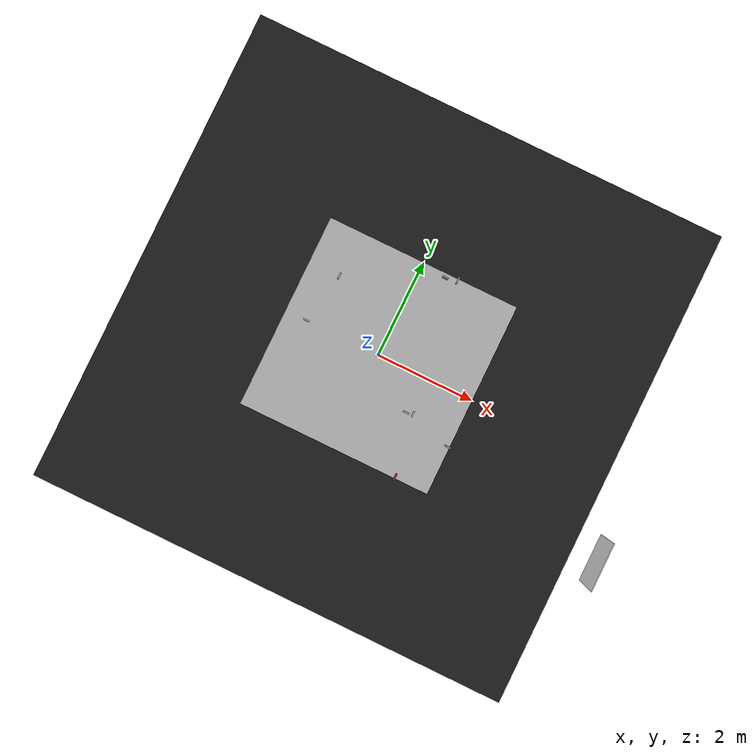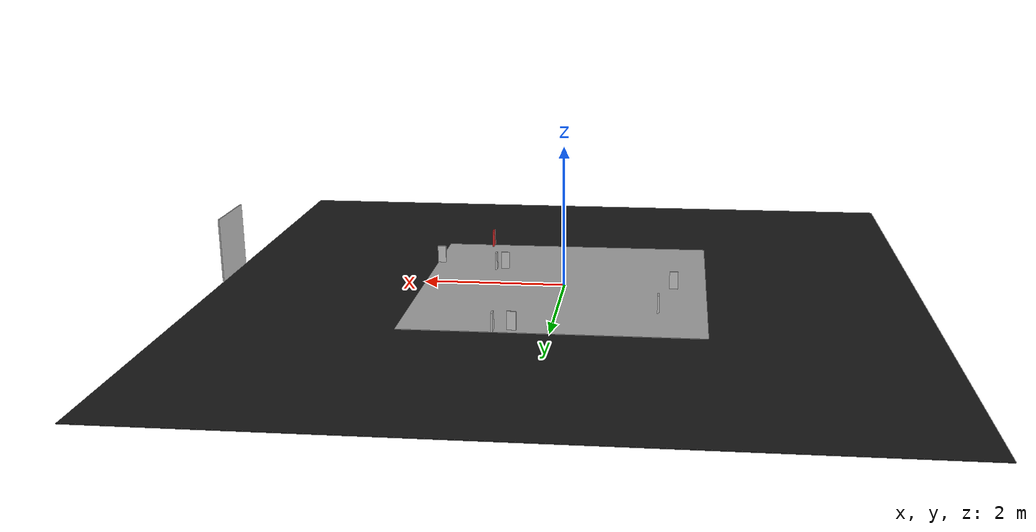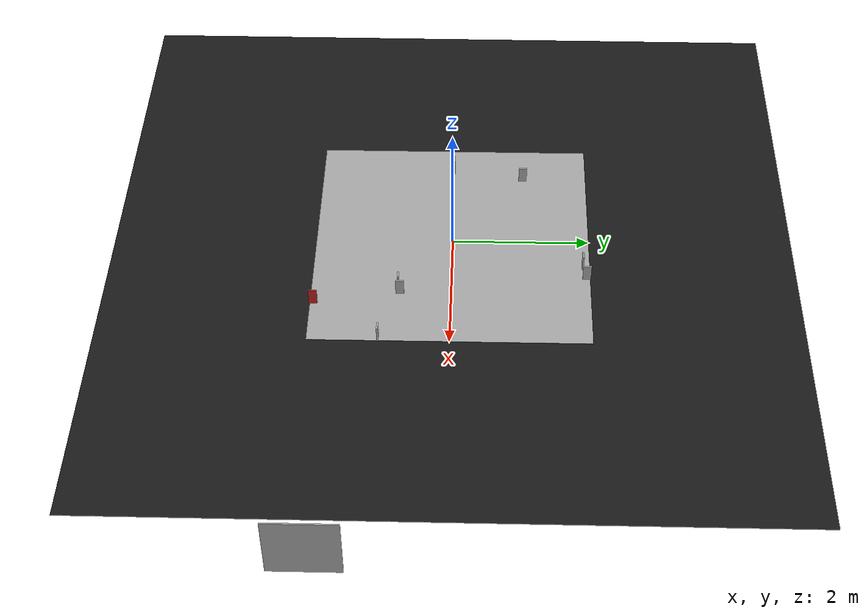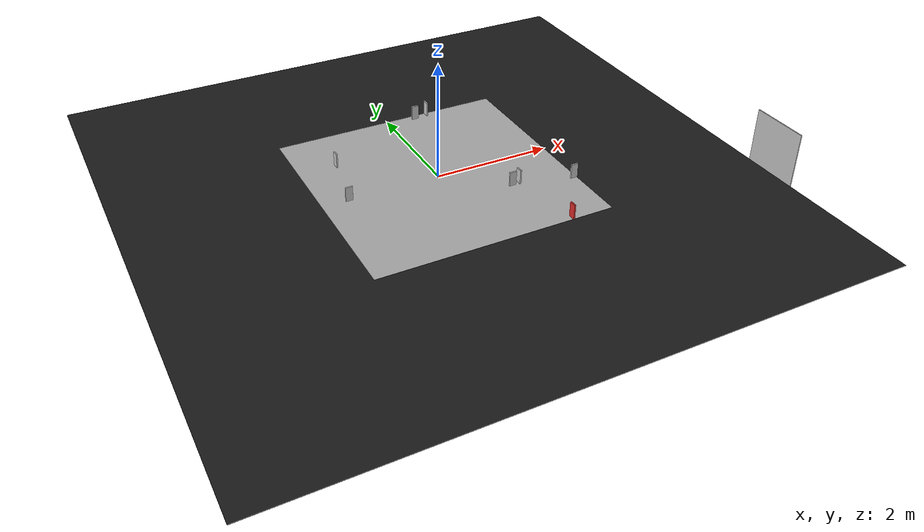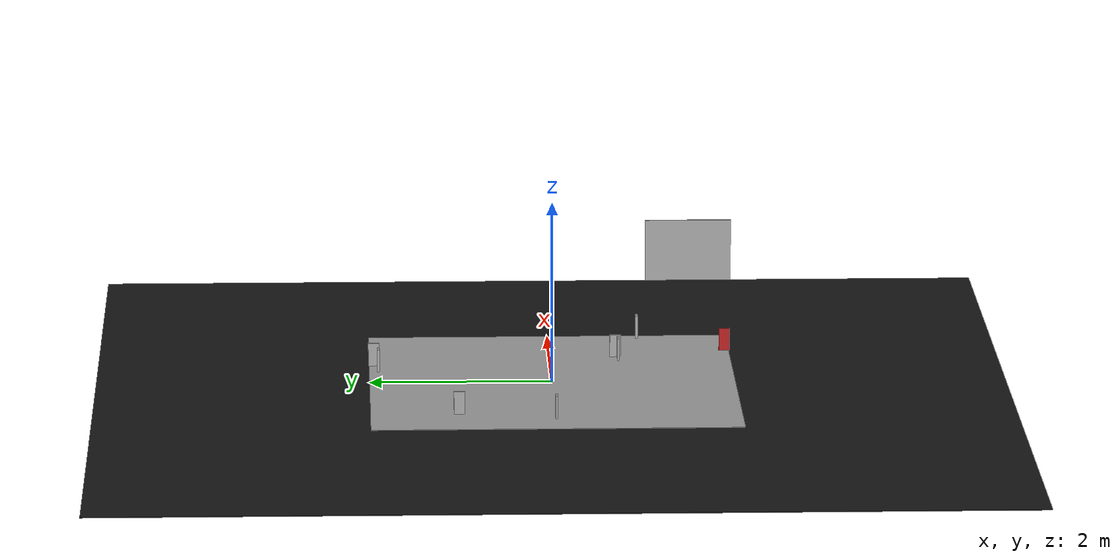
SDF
<sdf version="1.6">
 <world name="default">
  <scene>
   <ambient>0.8 0.8 0.8 1</ambient>
   <shadows>0</shadows>
   <grid>0</grid>
   <background>0.7 0.7 0.7 1</background>
  </scene>
  <include><uri>model://turtlebot3_autorace_2020/course</uri><pose>0 0 0 0 0 -3.14</pose></include>
  <include>
   <uri>model://turtlebot3_autorace_2020/traffic_light</uri>
   <pose>1.3 -1.95 0.13 0 0 -1.57</pose>
  </include>
  <include>
   <uri>model://turtlebot3_autorace_2020/traffic_parking</uri>
   <pose>0.74 1.95 0.13 0 0 -1.57</pose>
  </include>
  <include>
   <uri>model://turtlebot3_autorace_2020/traffic_tunnel</uri>
   <pose>-1.544 0.00 0.125 0 0 0</pose>
  </include>
  <include>
   <uri>model://turtlebot3_autorace_2020/traffic_stop</uri>
   <pose>-1.35 1.04 0.125 0 -0 -1.57</pose>
  </include>
  <include>
   <uri>model://turtlebot3_autorace_2020/traffic_pl_left</uri>
   <pose>0.50 1.90 0.13 0 0 0</pose>
  </include>
  <include>
   <uri>model://turtlebot3_autorace_2020/traffic_intersection</uri>
   <pose>1.95 -1.0 0.125 0 -0 0.0</pose>
  </include>
  <include>
   <uri>model://turtlebot3_autorace_2020/traffic_noentry</uri>
   <pose>0.95 -0.758 0.125 0 -0 0.0</pose>
  </include>
  <include>
   <uri>model://turtlebot3_autorace_2020/traffic_right</uri>
   <pose>1.08 -0.728 0.125 0 -0 -1.57</pose>
  </include>
  <include><uri>model://turtlebot3_autorace_2020/checker</uri><pose>5.50 -1.750 0.000 0 -0 0.0</pose></include>
  <light name="sun" type="directional">
   <pose>0 0 10 0 -0 0</pose>
   <diffuse>0.8 0.8 0.8 1</diffuse>
   <specular>0.1 0.1 0.1 1</specular>
   <attenuation>
    <range>1000</range>
    <constant>0.9</constant>
    <linear>0.01</linear>
    <quadratic>0.001</quadratic>
   </attenuation>
   <direction>-0.5 0.5 -1</direction>
  </light>
  <model name="ground2">
   <pose>0 0 -0.1 0 -0 0</pose>
   <static>1</static>
   <link name="ground">
    <collision name="ground_coll"><geometry><box><size>8 8 0.01</size></box></geometry></collision>
    <visual name="ground_vis">
     <geometry><box><size>10 10 0.01</size></box></geometry>
     <material>
      <script><uri>file://media/materials/scripts/gazebo.material</uri><name>Gazebo/FlatBlack</name></script>
     </material>
    </visual>
   </link>
  </model>
  <gravity>0 0 -9.8</gravity>
  <magnetic_field>6e-06 2.3e-05 -4.2e-05</magnetic_field>
  <atmosphere type="adiabatic"/>
  <physics name="default_physics" default="0" type="ode">
   <max_step_size>0.001</max_step_size>
   <real_time_factor>1</real_time_factor>
   <real_time_update_rate>1000</real_time_update_rate>
  </physics>
  <spherical_coordinates>
   <surface_model>EARTH_WGS84</surface_model>
   <latitude_deg>0</latitude_deg>
   <longitude_deg>0</longitude_deg>
   <elevation>0</elevation>
   <heading_deg>0</heading_deg>
  </spherical_coordinates>
  <light name="user_point_light_1" type="point">
   <pose>-1.648146 0.604519 1 0 -0 0</pose>
   <diffuse>0.5 0.5 0.5 1</diffuse>
   <specular>0.1 0.1 0.1 1</specular>
   <attenuation>
    <range>20</range>
    <constant>0.5</constant>
    <linear>0.01</linear>
    <quadratic>0.001</quadratic>
   </attenuation>
   <cast_shadows>0</cast_shadows>
   <direction>0 0 -1</direction>
  </light>
  <light name="user_point_light_2" type="point">
   <pose>1.63854 1.69565 1 0 -0 0</pose>
   <diffuse>0.5 0.5 0.5 1</diffuse>
   <specular>0.1 0.1 0.1 1</specular>
   <attenuation>
    <range>20</range>
    <constant>0.5</constant>
    <linear>0.01</linear>
    <quadratic>0.001</quadratic>
   </attenuation>
   <cast_shadows>0</cast_shadows>
   <direction>0 0 -1</direction>
  </light>
  <light name="user_point_light_3" type="point">
   <pose>0.42  -3.31 1 0 -0 0</pose>
   <diffuse>0.5 0.5 0.5 1</diffuse>
   <specular>0.1 0.1 0.1 1</specular>
   <attenuation>
    <range>20</range>
    <constant>0.5</constant>
    <linear>0.01</linear>
    <quadratic>0.001</quadratic>
   </attenuation>
   <cast_shadows>0</cast_shadows>
   <direction>0 0 -1</direction>
  </light>
  <model name="yellow_line_curve_1">
   <pose>-1.63 -0.6 0.001 0 0 1.57</pose>
   <static>1</static>
   <link name="link">
    <visual name="visual">
     <geometry><box><size>2.05 0.02 0.001</size></box></geometry>
     <material><ambient>1 0.8 0 1</ambient><diffuse>1 0.8 0 1</diffuse></material>
    </visual>
   </link>
  </model>
  <model name="yellow_line_curve_2">
   <pose>-0.7 -1.62 0.001 0 0 0</pose>
   <static>1</static>
   <link name="link">
    <visual name="visual">
     <geometry><box><size>1.85 0.02 0.001</size></box></geometry>
     <material><ambient>1 0.8 0 1</ambient><diffuse>1 0.8 0 1</diffuse></material>
    </visual>
   </link>
  </model>
  <model name="white_line_curve_1">
   <pose>-1.88 -0.87 0.001 0 0 1.57</pose>
   <static>1</static>
   <link name="link">
    <visual name="visual">
     <geometry><box><size>2.0 0.02 0.001</size></box></geometry>
     <material><ambient>1 1 1 1</ambient><diffuse>1 1 1 1</diffuse></material>
    </visual>
   </link>
  </model>
  <model name="white_line_curve_2">
   <pose>-0.9 -1.88 0.001 0 0 0</pose>
   <static>1</static>
   <link name="link">
    <visual name="visual">
     <geometry><box><size>2.0 0.02 0.001</size></box></geometry>
     <material><ambient>1 1 1 1</ambient><diffuse>1 1 1 1</diffuse></material>
    </visual>
   </link>
  </model>
 </world>
</sdf>

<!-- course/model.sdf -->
<sdf version="1.6">
  <model name="course">
    <static>true</static>
    <link name="course_link">
      <collision name="course_collision">
        <geometry>
          <plane>
            <normal>0 0 1</normal>
            <size>4 4</size>
          </plane>
        </geometry>
        <surface>
          <friction>
            <ode>
              <mu>100</mu>
              <mu2>50</mu2>
            </ode>
          </friction>
        </surface>
      </collision>
      <visual name="course_visual">
        <cast_shadows>false</cast_shadows>
        <geometry>
	        <plane>
            <normal>0 0 1</normal>
            <size>4 4</size>
          </plane>
        </geometry>
	      <material>
          <script>
            <uri>model://turtlebot3_autorace_2020/course/materials/scripts</uri>
            <uri>model://turtlebot3_autorace_2020/course/materials/textures</uri>
            <name>course</name>
          </script>
        </material>
      </visual>
    </link>
  </model>
</sdf>

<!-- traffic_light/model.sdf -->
<sdf version='1.6'>
  <model name='traffic_light'>
    <link name='traffic_light'>
      <pose>0 0 0 0 0 0</pose>
      <collision name='collision'>
        <geometry>
          <box>
            <size>0.12 0.025 0.25</size>
          </box>
        </geometry>
      </collision>
      <visual name='visual'>
        <geometry>
          <box>
            <size>0.12 0.025 0.25</size>
          </box>
        </geometry>
        <material>
          <script>
            <uri>model://turtlebot3_autorace_2020/traffic_light/materials/scripts</uri>
            <uri>model://turtlebot3_autorace_2020/traffic_light/materials/textures</uri>
            <name>traffic_light_red</name>
          </script>
        </material>
      </visual>
    </link>
    <plugin name="traffic_light_plugin" filename="libtraffic_light_plugin.so">
      <ros>
        <remapping>~/out:=traffic_light_status</remapping>
      </ros>
    </plugin>
    <static>1</static>
  </model>
</sdf>

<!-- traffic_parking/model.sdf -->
<sdf version="1.6">
  <model name="traffic_parking">
    <static>true</static>
    <link name="box">
      <pose>0 0 0 0 0 0</pose>
      <collision name="collision">
        <geometry>
          <box>
            <size>0.12 0.025 0.25</size>
          </box>
        </geometry>
      </collision>
      <visual name="visual">
        <geometry>
          <box>
            <size>0.12 0.025 0.25</size>
          </box>
        </geometry>
        <material>
          <script>
            <uri>model://turtlebot3_autorace_2020/traffic_parking/materials/scripts</uri>
            <uri>model://turtlebot3_autorace_2020/traffic_parking/materials/textures</uri>
            <name>traffic_parking</name>
          </script>
        </material>
      </visual>
    </link>
  </model>
</sdf>

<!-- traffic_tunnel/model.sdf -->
<sdf version="1.6">
  <model name="traffic_tunnel">
    <pose>0 0 0.125 0 0 0</pose>
    <link name="box">
      <pose>0 0 0 0 0 0</pose>
      <collision name="collision">
        <geometry>
          <box>
            <size>0.12 0.025 0.25</size>
          </box>
        </geometry>
      </collision>
      <visual name="visual">
        <geometry>
          <box>
            <size>0.12 0.025 0.25</size>
          </box>
        </geometry>
        <material>
          <script>
            <uri>model://turtlebot3_autorace_2020/traffic_tunnel/materials/scripts</uri>
            <uri>model://turtlebot3_autorace_2020/traffic_tunnel/materials/textures</uri>
            <name>traffic_tunnel</name>
          </script>
        </material>
      </visual>
    </link>
  </model>
</sdf>

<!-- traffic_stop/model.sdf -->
<sdf version="1.6">
  <model name="traffic_stop">
    <static>true</static>
    <link name="box">
      <pose>0 0 0 0 0 0</pose>
      <collision name="collision">
        <geometry>
          <box>
            <size>0.12 0.025 0.25</size>
          </box>
        </geometry>
      </collision>
      <visual name="visual">
        <geometry>
          <box>
            <size>0.12 0.025 0.25</size>
          </box>
        </geometry>
        <material>
          <script>
            <uri>model://turtlebot3_autorace_2020/traffic_stop/materials/scripts</uri>
            <uri>model://turtlebot3_autorace_2020/traffic_stop/materials/textures</uri>
            <name>traffic_stop</name>
          </script>
        </material>
      </visual>
    </link>
  </model>
</sdf>

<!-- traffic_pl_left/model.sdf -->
<sdf version="1.6">
  <model name="traffic_pl_left">
    <static>true</static>
    <link name="box">
      <pose>0 0 0 0 0 0</pose>
      <collision name="collision">
        <geometry>
          <box>
            <size>0.12 0.025 0.25</size>
          </box>
        </geometry>
      </collision>
      <visual name="visual">
        <geometry>
          <box>
            <size>0.12 0.025 0.25</size>
          </box>
        </geometry>
        <material>
          <script>
            <uri>model://turtlebot3_autorace_2020/traffic_pl_left/materials/scripts</uri>
            <uri>model://turtlebot3_autorace_2020/traffic_pl_left/materials/textures</uri>
            <name>traffic_pl_left</name>
          </script>
        </material>
      </visual>
    </link>
  </model>
</sdf>

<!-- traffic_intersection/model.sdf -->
<sdf version="1.6">
  <model name="traffic_intersection">
    <static>true</static>
    <link name="box">
      <pose>0 0 0 0 0 0</pose>
      <collision name="collision">
        <geometry>
          <box>
            <size>0.12 0.025 0.25</size>
          </box>
        </geometry>
      </collision>
      <visual name="visual">
        <geometry>
          <box>
            <size>0.12 0.025 0.25</size>
          </box>
        </geometry>
        <material>
          <script>
            <uri>model://turtlebot3_autorace_2020/traffic_intersection/materials/scripts</uri>
            <uri>model://turtlebot3_autorace_2020/traffic_intersection/materials/textures</uri>
            <name>traffic_intersection</name>
          </script>
        </material>
      </visual>
    </link>
  </model>
</sdf>

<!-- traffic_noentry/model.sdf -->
<sdf version="1.6">
  <model name="traffic_noentry">
    <static>true</static>
    <link name="box">
      <pose>0 0 0 0 0 0</pose>
      <collision name="collision">
        <geometry>
          <box>
            <size>0.12 0.025 0.25</size>
          </box>
        </geometry>
      </collision>
      <visual name="visual">
        <geometry>
          <box>
            <size>0.12 0.025 0.25</size>
          </box>
        </geometry>
        <material>
          <script>
            <uri>model://turtlebot3_autorace_2020/traffic_noentry/materials/scripts</uri>
            <uri>model://turtlebot3_autorace_2020/traffic_noentry/materials/textures</uri>
            <name>traffic_noentry</name>
          </script>
        </material>
      </visual>
    </link>
  </model>
</sdf>

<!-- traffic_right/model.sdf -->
<sdf version="1.6">
  <model name="traffic_right">
    <static>true</static>
    <link name="box">
      <pose>0 0 0 0 0 0</pose>
      <collision name="collision">
        <geometry>
          <box>
            <size>0.12 0.025 0.25</size>
          </box>
        </geometry>
      </collision>
      <visual name="visual">
        <geometry>
          <box>
            <size>0.12 0.025 0.25</size>
          </box>
        </geometry>
        <material>
          <script>
            <uri>model://turtlebot3_autorace_2020/traffic_right/materials/scripts</uri>
            <uri>model://turtlebot3_autorace_2020/traffic_right/materials/textures</uri>
            <name>traffic_right</name>
          </script>
        </material>
      </visual>
    </link>
  </model>
</sdf>

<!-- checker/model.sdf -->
<sdf version="1.6">
  <model name="checker">
    <static>true</static>
    <link name="box">
      <pose>0 0 0 0 0 0</pose>
      <collision name="collision">
        <geometry>
          <box>
            <size>0.02 1 1</size>
          </box>
        </geometry>
      </collision>
      <visual name="visual">
        <geometry>
          <box>
            <size>0.02 1 1</size>
          </box>
        </geometry>
        <material>
          <script>
            <uri>model://turtlebot3_autorace_2020/checker/materials/scripts</uri>
            <uri>model://turtlebot3_autorace_2020/checker/materials/textures</uri>
            <name>checker</name>
          </script>
        </material>
      </visual>
    </link>
  </model>
</sdf>
